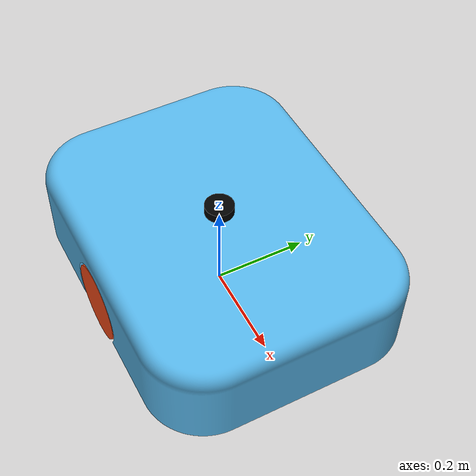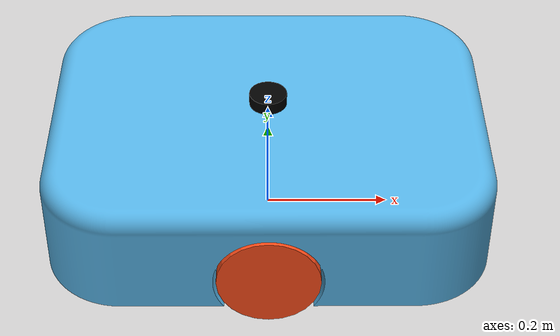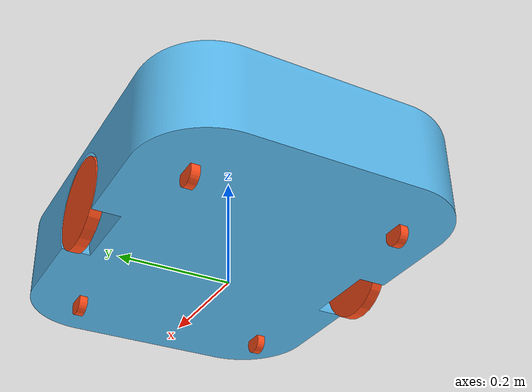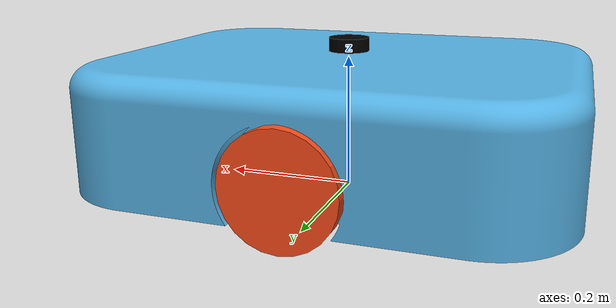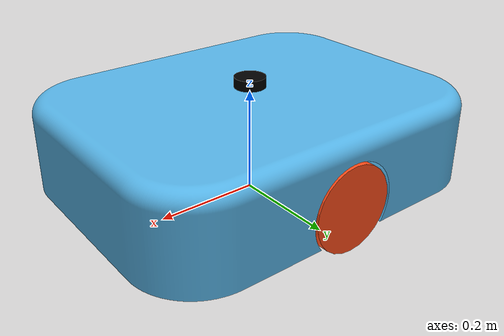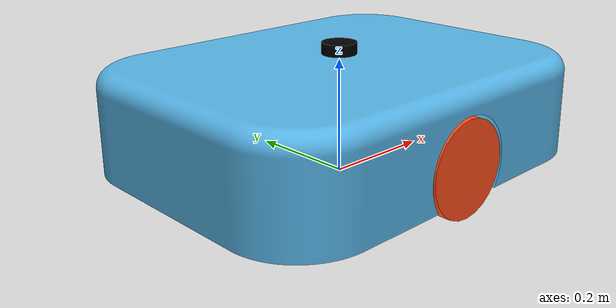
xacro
<?xml version="1.0"?>
<robot name="twr" xmlns:xacro="http://ros.org/wiki/xacro">

  <xacro:arg name="sim" default="gazebo_sim"/>
  <xacro:property name="sim" value="$(arg sim)"/>

  <xacro:include filename="$(find twr_description)/urdf/macros/inertia.macro.xacro"/>
  <xacro:include filename="$(find twr_description)/urdf/macros/wheel.macro.xacro"/>
  <xacro:include filename="$(find twr_description)/urdf/macros/lidar.macro.xacro"/>

  <xacro:if value="${sim == 'gazebo_sim'}">
    <xacro:include filename="$(find twr_description)/urdf/packages/gz.xacro"/>
    <xacro:include filename="$(find twr_description)/urdf/packages/ros2_control_gz.xacro"/>
  </xacro:if>
  <xacro:if value="${sim == 'mujoco'}">
    <xacro:include filename="$(find twr_description)/urdf/packages/ros2_control_mjc.xacro"/>
  </xacro:if>

  <xacro:include filename="$(find twr_description)/urdf/properties/colors.xacro"/>
  <xacro:include filename="$(find twr_description)/urdf/properties/geometry.xacro"/>

  <!-- === BASE === -->
  <xacro:include filename="$(find twr_description)/urdf/parts/twr_base.xacro"/>

  <!-- === WHEELS === -->
  <xacro:include filename="$(find twr_description)/urdf/parts/twr_drive_wheels.xacro"/>
  <xacro:include filename="$(find twr_description)/urdf/parts/twr_caster_wheels.xacro"/>

  <!-- === SENSORS === -->
  <xacro:include filename="$(find twr_description)/urdf/parts/sensors/twr_lidar.xacro"/>
  <xacro:include filename="$(find twr_description)/urdf/parts/sensors/twr_imu.xacro"/>

</robot>

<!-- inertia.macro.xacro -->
<robot xmlns:xacro="http://www.ros.org/wiki/xacro" >

  <xacro:macro name="inertia" params="shape xyz rpy l:=0 w:=0 h:=0 r:=0 m:=0">
    <inertial>
      <mass value="${m}"/>

      <xacro:if value="${shape == 'box'}">
        <inertia
          ixx="${m/12 * (h*h + l*l)}" ixy="0.0" ixz="0.0"
          iyy="${m/12 * (w*w + l*l)}" iyz="0.0"
          izz="${m/12 * (w*w + h*h)}"
        />
      </xacro:if>

      <xacro:if value="${shape == 'cylinder'}">
        <inertia
          ixx="${m*w*w/12 + m*r*r/4}" ixy="0.0" ixz="0.0"
          iyy="${m*w*w/12 + m*r*r/4}" iyz="0.0"
          izz="${m*r*r/2}"
        />
      </xacro:if>

      <xacro:if value="${shape == 'sphere'}">
        <inertia
          ixx="${m*r*r*2/5}" ixy="0.0" ixz="0.0"
          iyy="${m*r*r*2/5}" iyz="0.0"
          izz="${m*r*r*2/5}"
        />
      </xacro:if>

      <origin xyz="${xyz}" rpy="${rpy}"/>
    </inertial>
  </xacro:macro>

</robot>

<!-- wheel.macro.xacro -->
<robot xmlns:xacro="http://www.ros.org/wiki/xacro" >

  <xacro:macro name="wheel" params="name type parent xyz rpy radius width m xyz_axis material_name">
    <!-- === Drive wheel === -->
    <xacro:if value="${type == 'drive'}">
      <joint name="${name}_joint" type="continuous">
        <parent link="${parent}"/>
        <child link="${name}_link"/>
        <origin xyz="${xyz}" rpy="${rpy}"/>
        <axis xyz="${xyz_axis}"/>
      </joint>

      <link name="${name}_link">
        <visual>
          <geometry>
            <cylinder radius="${radius}" length="${width}"/>
          </geometry>
          <material name="${material_name}"/>
          <origin xyz="0 0 0" rpy="0 0 0"/>
        </visual>

        <collision>
          <geometry>
            <cylinder radius="${radius}" length="${width}"/>
          </geometry>
          <origin xyz="0 0 0" rpy="0 0 0"/>
        </collision>

        <xacro:inertia
          shape="cylinder"
          xyz="0 0 0"
          rpy="0 0 0"
          r="${radius}"
          w="${width}"
          m="${m}"
        />

      </link>
    </xacro:if>

    <!-- === Caster wheel === -->
    <xacro:if value="${type == 'caster'}">
      <joint name="${name}_joint" type="fixed">
        <parent link="${parent}"/>
        <child link="${name}_link"/>
        <origin xyz="${xyz}" rpy="${rpy}"/>
      </joint>

      <link name="${name}_link">
        <visual>
          <geometry>
            <cylinder radius="${radius}" length="${width}"/>
          </geometry>
          <material name="${material_name}"/>
          <origin xyz="0 0 0" rpy="0 0 0"/>
        </visual>

        <collision>
          <geometry>
            <cylinder radius="${radius}" length="${width}"/>
          </geometry>
          <origin xyz="0 0 0" rpy="0 0 0"/>
        </collision>

        <xacro:inertia
          shape="cylinder"
          xyz="0 0 0"
          rpy="0 0 0"
          r="${radius}"
          w="${width}"
          m="${m}"
        />

        <gazebo reference="${name}_link">
          <mu1>0</mu1>
          <mu2>0</mu2>
        </gazebo>

      </link>
    </xacro:if>
  </xacro:macro>

</robot>

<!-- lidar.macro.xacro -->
<robot xmlns:xacro="http://www.ros.org/wiki/xacro" >

  <xacro:macro name="lidar" params="name parent xyz rpy radius width m material_name">

    <joint name="${name}_joint" type="fixed">
      <parent link="${parent}"/>
      <child link="${name}_link"/>
      <origin xyz="${xyz}" rpy="${rpy}"/>
    </joint>

    <link name="${name}_link">
      <visual>
        <geometry>
          <cylinder radius="${radius}" length="${width}"/>
        </geometry>
        <material name="${material_name}"/>
        <origin xyz="0 0 0" rpy="0 0 0"/>
      </visual>

      <collision>
        <geometry>
          <cylinder radius="${radius}" length="${width}"/>
        </geometry>
        <origin xyz="0 0 0" rpy="0 0 0"/>
      </collision>

      <xacro:inertia
        shape="cylinder"
        xyz="0 0 0"
        rpy="0 0 0"
        r="${radius}"
        w="${width}"
        m="${m}"
      />

    </link>
  </xacro:macro>

</robot>

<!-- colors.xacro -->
<robot xmlns:xacro="http://www.ros.org/wiki/xacro" >
  <material name="white">
    <color rgba="1 1 1 1" />
  </material>

  <material name="orange">
    <color rgba="1 0.3 0.1 1"/>
  </material>

  <material name="blue">
    <color rgba="0.2 0.2 1 1"/>
  </material>

  <material name="black">
    <color rgba="0 0 0 1"/>
  </material>
</robot>

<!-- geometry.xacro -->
<robot xmlns:xacro="http://www.ros.org/wiki/xacro" >

  <xacro:property name="mm2m" value="0.001"/>

  <xacro:property name="chassis_length" value="${700*mm2m}"/>
  <xacro:property name="chassis_width" value="${550*mm2m}"/>
  <xacro:property name="chassis_height" value="${175*mm2m}"/>

  <xacro:property name="drive_wheel_radius" value="${80*mm2m}"/>
  <xacro:property name="drive_wheel_width" value="${20*mm2m}"/>

  <xacro:property name="drive_wheel_axis_offset" value="${50*mm2m}"/>
  <xacro:property name="track_width" value="${chassis_width - drive_wheel_width}"/>

  <xacro:property name="caster_wheel_radius" value="${20*mm2m}"/>
  <xacro:property name="caster_wheel_width" value="${15*mm2m}"/>

  <xacro:property name="lidar_radius" value="${30*mm2m}"/>
  <xacro:property name="lidar_width" value="${20*mm2m}"/>

  <xacro:property name="imu_length" value="${10*mm2m}"/>
  <xacro:property name="imu_width" value="${10*mm2m}"/>
  <xacro:property name="imu_height" value="${10*mm2m}"/>

</robot>

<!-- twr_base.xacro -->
<robot xmlns:xacro="http://ros.org/wiki/xacro">

  <!-- Base Frame -->
  <link name="base_link"/>

  <!-- Chassis Frame -->
  <joint name="chassis_joint" type="fixed">
    <parent link="base_link"/>
    <child link="chassis_link" />
    <origin xyz="0 0 ${drive_wheel_radius - drive_wheel_axis_offset}" rpy="0 0 0"/>
  </joint>

  <link name="chassis_link">
    <visual>
      <geometry>
        <mesh filename="file://$(find twr_description)/mesh/twr_base.obj" scale="0.001 0.001 0.001"/>
      </geometry>
      <origin xyz="0 0 0" rpy="0 0 0"/>
    </visual>

    <collision>
      <geometry>
        <mesh filename="file://$(find twr_description)/mesh/twr_base.obj" scale="0.001 0.001 0.001"/>
      </geometry>
      <origin xyz="0 0 0" rpy="0 0 0"/>
    </collision>

    <xacro:inertia
      shape="box"
      xyz="0 0 ${chassis_height/2}"
      rpy="0 0 0"
      l="${chassis_length}"
      w="${chassis_width}"
      h="${chassis_height}"
      m="1"
    />

  </link>

  <!-- Base Footprint -->
  <joint name="base_footprint_joint" type="fixed">
    <parent link="base_link"/>
    <child link="base_footprint" />
    <origin xyz="0 0 0" rpy="0 0 0"/>
  </joint>

  <link name="base_footprint"/>

</robot>

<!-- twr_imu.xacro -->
<robot xmlns:xacro="http://ros.org/wiki/xacro">

  <joint name="imu_joint" type="fixed">
    <parent link="chassis_link"/>
    <child link="imu_link" />
    <origin xyz="0 0 ${chassis_height/2}" rpy="0 0 0"/>
  </joint>

  <link name="imu_link">
    <visual>
      <geometry>
        <box size="${imu_length} ${imu_width} ${imu_height}"/>
      </geometry>
      <material name="black"/>
      <origin xyz="0 0 0" rpy="0 0 0"/>
    </visual>

    <collision>
      <geometry>
        <box size="${imu_length} ${imu_width} ${imu_height}"/>
      </geometry>
      <origin xyz="0 0 0" rpy="0 0 0"/>
    </collision>

    <xacro:inertia
      shape="box"
      xyz="0 0 0"
      rpy="0 0 0"
      l="${imu_length}"
      w="${imu_width}"
      h="${imu_height}"
      m="0.02"
    />
  </link>

</robot>
